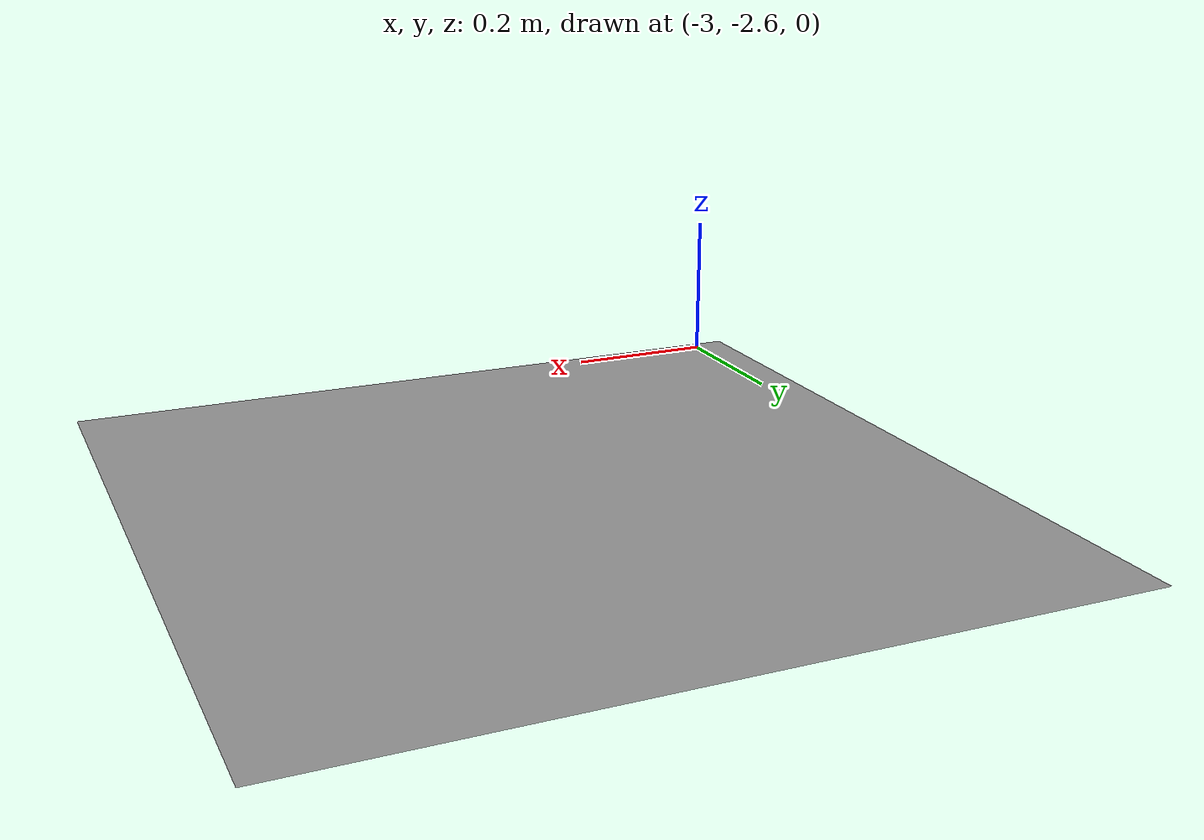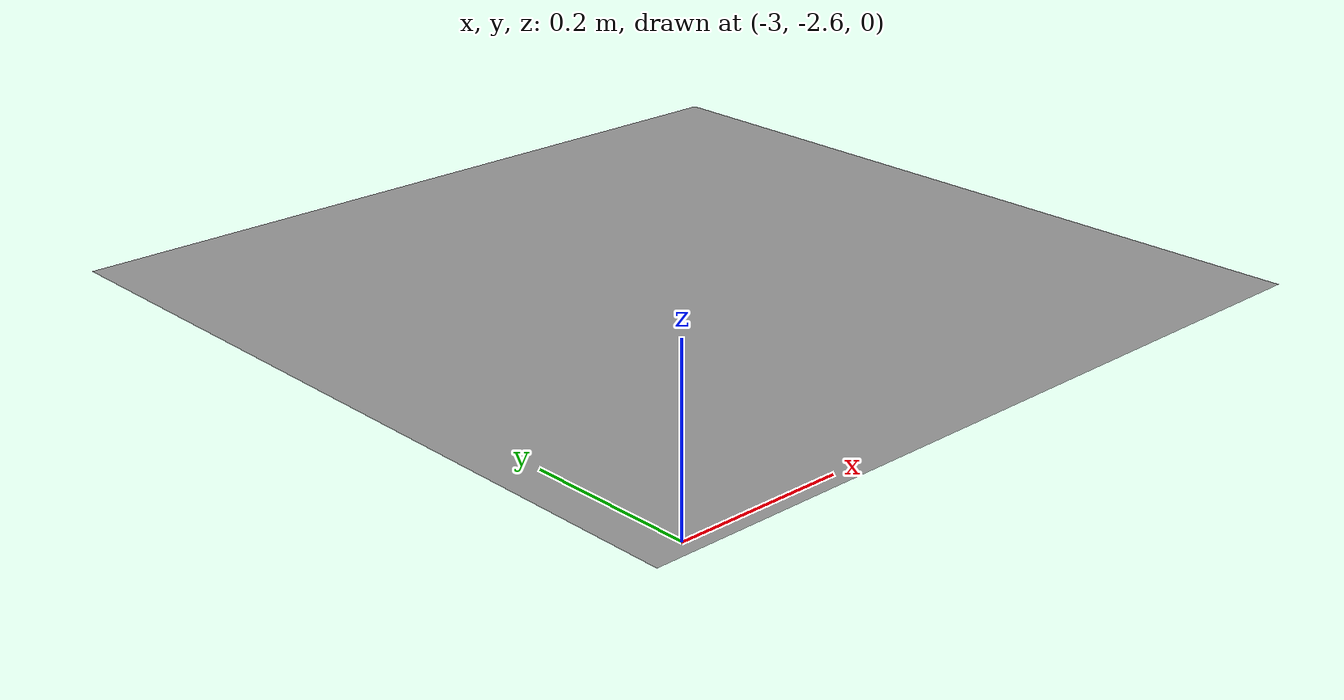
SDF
<?xml version='1.0'?>
<sdf version='1.4'>
  <model name='BuildingDefaultName'>
    <link name='Stairs_1'>
      <visual name='Stairs_1_Visual_0'>
        <pose>-2.55 -2.12 0 0 -0 0</pose>
        <geometry>
          <box>
            <size>1 1 0</size>
          </box>
        </geometry>
        <material>
          <script>
            <uri>file://media/materials/scripts/gazebo.material</uri>
            <name>Gazebo/Grey</name>
          </script>
        </material>
      </visual>
      <collision name='Stairs_1_Collision_0'>
        <geometry>
          <box>
            <size>1 1 0</size>
          </box>
        </geometry>
        <pose>-2.55 -2.12 0 0 -0 0</pose>
      </collision>
    </link>
    <static>1</static>
  </model>
</sdf>
